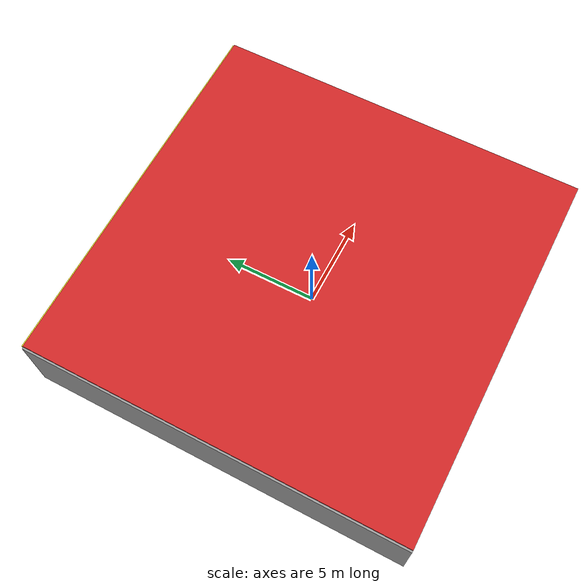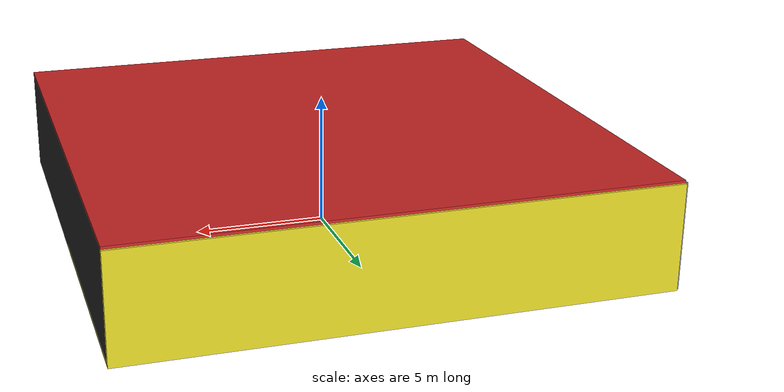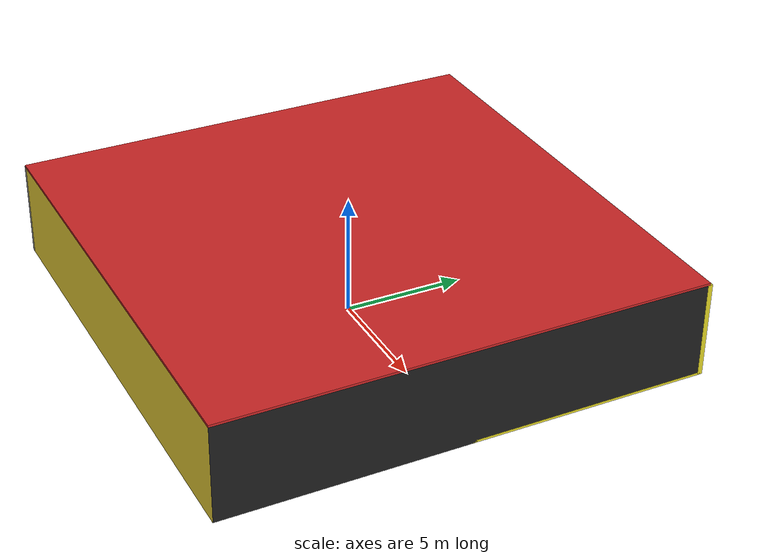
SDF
<sdf version="1.4">
 <world name="default">
  <physics type="ode">
   <max_step_size>0.001</max_step_size>
   <real_time_factor>1</real_time_factor>
   <real_time_update_rate>1000</real_time_update_rate>
   <gravity>0 0 -9.8</gravity>
  </physics>
  <scene><ambient>0.4 0.4 0.4 1</ambient><background>0.7 0.7 0.7 1</background><shadows>1</shadows></scene>
  <model name="Surrounding">
   <static>1</static>
   <link name="Ceiling">
    <collision name="Ceiling_Collision"><geometry><box><size>20 20 0.1</size></box></geometry></collision>
    <visual name="Ceiling_Visual">
     <geometry><box><size>20 20 0.1</size></box></geometry>
     <material>
      <script><uri>file://media/materials/scripts/gazebo.material</uri><name>Gazebo/Red</name></script>
     </material>
    </visual>
    <pose>0 0 4.05 0 0 0</pose>
   </link>
   <link name="Wall_South">
    <collision name="Wall_South_Collision">
     <geometry><box><size>20 0 4</size></box></geometry>
     <pose>0 0 2 0 -0 0</pose>
    </collision>
    <visual name="Wall_South_Visual">
     <pose>0 0 2 0 -0 0</pose>
     <geometry><box><size>20 0 4</size></box></geometry>
     <material>
      <script><uri>file://media/materials/scripts/gazebo.material</uri><name>Gazebo/ZincYellow</name></script>
     </material>
    </visual>
    <velocity_decay><linear>0</linear><angular>0</angular></velocity_decay>
    <pose>0 -10 0 0 -0 0</pose>
   </link>
   <link name="Wall_East">
    <collision name="Wall_21_Collision">
     <geometry><box><size>20 0 4</size></box></geometry>
     <pose>0 0 2 0 -0 0</pose>
    </collision>
    <visual name="Wall_21_Visual">
     <pose>0 0 2 0 -0 0</pose>
     <geometry><box><size>20 0 4</size></box></geometry>
     <material>
      <script><uri>file://media/materials/scripts/gazebo.material</uri><name>Gazebo/FlatBlack</name></script>
     </material>
    </visual>
    <velocity_decay><linear>0</linear><angular>0</angular></velocity_decay>
    <pose>10 0 0 0 -0 1.5708</pose>
   </link>
   <link name="Wall_North">
    <collision name="Wall_22_Collision">
     <geometry><box><size>20 0.2 4</size></box></geometry>
     <pose>0 0 2 0 -0 0</pose>
    </collision>
    <visual name="Wall_22_Visual">
     <pose>0 0 2 0 -0 0</pose>
     <geometry><box><size>20 0.2 4</size></box></geometry>
     <material>
      <script><uri>file://media/materials/scripts/gazebo.material</uri><name>Gazebo/YellowGlow</name></script>
     </material>
    </visual>
    <velocity_decay><linear>0</linear><angular>0</angular></velocity_decay>
    <pose>0 10 0 0 -0 0</pose>
   </link>
   <link name="Wall_West">
    <collision name="Wall_23_Collision">
     <geometry><box><size>20 0.2 4</size></box></geometry>
     <pose>0 0 2 0 -0 0</pose>
    </collision>
    <visual name="Wall_23_Visual">
     <pose>0 0 2 0 -0 0</pose>
     <geometry><box><size>20 0.2 4</size></box></geometry>
     <material>
      <script><uri>file://media/materials/scripts/gazebo.material</uri><name>Gazebo/GreyGradientSky</name></script>
     </material>
    </visual>
    <velocity_decay><linear>0</linear><angular>0</angular></velocity_decay>
    <pose>-10 0 0 0 0 -1.5708</pose>
   </link>
   <link name="Ground_link">
    <collision name="collision">
     <pose>0 0 .05 0 -0 0</pose>
     <geometry><box><size>20 20 0.1</size></box></geometry>
    </collision>
    <visual name="visual">
     <pose>0 0 .05 0 -0 0</pose>
     <geometry><box><size>20 20 0.1</size></box></geometry>
     <material>
      <script><uri>file://media/materials/scripts/gazebo.material</uri><name>Gazebo/YellowGlow</name></script>
     </material>
    </visual>
   </link>
   <static>1</static>
  </model>
  <spherical_coordinates>
   <surface_model>EARTH_WGS84</surface_model>
   <latitude_deg>0</latitude_deg>
   <longitude_deg>0</longitude_deg>
   <elevation>0</elevation>
   <heading_deg>0</heading_deg>
  </spherical_coordinates>
  <light name="lightball_0" type="diffuse">
   <diffuse>0.8 0.8 0.8 1</diffuse>
   <specular>0.2 0.2 0.2 1</specular>
   <attenuation>
    <range>100</range>
    <constant>0.7</constant>
    <linear>0.01</linear>
    <quadratic>0.001</quadratic>
   </attenuation>
   <direction>-0.5 0.1 -0.9</direction>
   <pose>7.6452283639 9.7302187877 1.2278465934 0 0 0</pose>
  </light>
  <light name="lightball_1" type="diffuse">
   <diffuse>0.8 0.8 0.8 1</diffuse>
   <specular>0.2 0.2 0.2 1</specular>
   <attenuation>
    <range>100</range>
    <constant>0.7</constant>
    <linear>0.01</linear>
    <quadratic>0.001</quadratic>
   </attenuation>
   <direction>-0.5 0.1 -0.9</direction>
   <pose>-7.60227995971 -2.44690584788 3.78190616577 0 0 0</pose>
  </light>
  <light name="lightball_2" type="diffuse">
   <diffuse>0.8 0.8 0.8 1</diffuse>
   <specular>0.2 0.2 0.2 1</specular>
   <attenuation>
    <range>100</range>
    <constant>0.7</constant>
    <linear>0.01</linear>
    <quadratic>0.001</quadratic>
   </attenuation>
   <direction>-0.5 0.1 -0.9</direction>
   <pose>-2.62871530572 5.62541799133 3.65858827263 0 0 0</pose>
  </light>
  <light name="lightball_3" type="diffuse">
   <diffuse>0.8 0.8 0.8 1</diffuse>
   <specular>0.2 0.2 0.2 1</specular>
   <attenuation>
    <range>100</range>
    <constant>0.7</constant>
    <linear>0.01</linear>
    <quadratic>0.001</quadratic>
   </attenuation>
   <direction>-0.5 0.1 -0.9</direction>
   <pose>1.4354337721 7.62758518834 1.66916628336 0 0 0</pose>
  </light>
  <light name="lightball_4" type="diffuse">
   <diffuse>0.8 0.8 0.8 1</diffuse>
   <specular>0.2 0.2 0.2 1</specular>
   <attenuation>
    <range>100</range>
    <constant>0.7</constant>
    <linear>0.01</linear>
    <quadratic>0.001</quadratic>
   </attenuation>
   <direction>-0.5 0.1 -0.9</direction>
   <pose>-8.23878816214 7.829338556 0.627637265217 0 0 0</pose>
  </light>
  <include>
   <uri>model://construction_cone</uri>
   <pose>-7.12313937085 -8.54002716909 0 0 0 1.40084496535</pose>
  </include>
  <include>
   <uri>model://robocup_3Dsim_goal</uri>
   <pose>-5.11104399513 -6.95133702859 0 0 0 0.431911730242</pose>
  </include>
  <include>
   <uri>model://construction_cone</uri>
   <pose>-4.60420622261 3.92616829486 0 0 0 2.33585308708</pose>
  </include>
  <include>
   <uri>model://robocup_3Dsim_goal</uri>
   <pose>2.33354839903 -1.17693141936 0 0 0 1.06904072978</pose>
  </include>
  <include><uri>model://cabinet</uri><pose>4.80017312997 4.96008966642 0 0 0 2.08473194845</pose></include>
 </world>
</sdf>

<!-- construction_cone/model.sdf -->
<sdf version="1.5">
  <model name="Construction Cone">
    <link name="link">
      <collision name="collision">
        <geometry>
          <mesh>
            <scale>10 10 10</scale>
            <uri>file://isr-testbed/construction_cone/meshes/construction_cone.dae</uri>
          </mesh>
        </geometry>
      </collision>
      <visual name="visual">
        <geometry>
          <mesh>
            <scale>10 10 10</scale>
            <uri>file://isr-testbed/construction_cone/meshes/construction_cone.dae</uri>
          </mesh>
        </geometry>
      </visual>
    </link>
  </model>
</sdf>

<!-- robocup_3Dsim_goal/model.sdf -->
<sdf version="1.5">
  <model name="robocup_3d_goal">
    <static>true</static>
    <link name="left_post">
      <pose>0 1.05 0.45 0 0 0</pose>
      <collision name="collision">
        <geometry>
          <cylinder>
            <radius>0.05</radius>
            <length>0.9</length>
          </cylinder>
        </geometry>
      </collision>
      <visual name="visual">
        <geometry>
          <cylinder>
            <radius>0.05</radius>
            <length>0.9</length>
          </cylinder>
        </geometry>
        <material>
          <script>
            <uri>file://media/materials/scripts/gazebo.material</uri>
            <name>Gazebo/ZincYellow</name>
          </script>
        </material>
      </visual>
    </link>
    <link name="left_support_horiz_lower">
      <pose>0.30 1.05 0.01 0 0 0</pose>
      <collision name="collision">
        <geometry>
          <box>
            <size>0.50 0.02 0.02</size>
          </box>
        </geometry>
      </collision>
      <visual name="visual">
        <geometry>
          <box>
            <size>0.50 0.02 0.02</size>
          </box>
        </geometry>
        <material>
          <script>
            <uri>file://media/materials/scripts/gazebo.material</uri>
            <name>Gazebo/White</name>
          </script>
        </material>
      </visual>
    </link>
    <link name="left_support_horiz_upper">
      <pose>0.30 1.05 0.79 0 0 0</pose>
      <collision name="collision">
        <geometry>
          <box>
            <size>0.50 0.02 0.02</size>
          </box>
        </geometry>
      </collision>
      <visual name="visual">
        <geometry>
          <box>
            <size>0.50 0.02 0.02</size>
          </box>
        </geometry>
        <material>
          <script>
            <uri>file://media/materials/scripts/gazebo.material</uri>
            <name>Gazebo/White</name>
          </script>
        </material>
      </visual>
    </link>
    <link name="left_support_vertical">
      <pose>0.56 1.05 0.4 0 1.5708 0</pose>
      <collision name="collision">
        <geometry>
          <box>
            <size>0.80 0.02 0.02</size>
          </box>
        </geometry>
      </collision>
      <visual name="visual">
        <geometry>
          <box>
            <size>0.80 0.02 0.02</size>
          </box>
        </geometry>
        <material>
          <script>
            <uri>file://media/materials/scripts/gazebo.material</uri>
            <name>Gazebo/White</name>
          </script>
        </material>
      </visual>
    </link>
    <link name="right_support_horiz_lower">
      <pose>0.30 -1.05 0.01 0 0 0</pose>
      <collision name="collision">
        <geometry>
          <box>
            <size>0.50 0.02 0.02</size>
          </box>
        </geometry>
      </collision>
      <visual name="visual">
        <geometry>
          <box>
            <size>0.50 0.02 0.02</size>
          </box>
        </geometry>
        <material>
          <script>
            <uri>file://media/materials/scripts/gazebo.material</uri>
            <name>Gazebo/White</name>
          </script>
        </material>
      </visual>
    </link>
    <link name="right_support_horiz_upper">
      <pose>0.30 -1.05 0.79 0 0 0</pose>
      <collision name="collision">
        <geometry>
          <box>
            <size>0.50 0.02 0.02</size>
          </box>
        </geometry>
      </collision>
      <visual name="visual">
        <geometry>
          <box>
            <size>0.50 0.02 0.02</size>
          </box>
        </geometry>
        <material>
          <script>
            <uri>file://media/materials/scripts/gazebo.material</uri>
            <name>Gazebo/White</name>
          </script>
        </material>
      </visual>
    </link>
    <link name="right_support_vertical">
      <pose>0.56 -1.05 0.4 0 1.5708 0</pose>
      <collision name="collision">
        <geometry>
          <box>
            <size>0.80 0.02 0.02</size>
          </box>
        </geometry>
      </collision>
      <visual name="visual">
        <geometry>
          <box>
            <size>0.80 0.02 0.02</size>
          </box>
        </geometry>
        <material>
          <script>
            <uri>file://media/materials/scripts/gazebo.material</uri>
            <name>Gazebo/White</name>
          </script>
        </material>
      </visual>
    </link>
    <link name="center_support_horiz_lower">
      <pose>0.56 0 0.01 0 1.5708 0</pose>
      <collision name="collision">
        <geometry>
          <box>
            <size>0.02 2.08 0.02</size>
          </box>
        </geometry>
      </collision>
      <visual name="visual">
        <geometry>
          <box>
            <size>0.02 2.08 0.02</size>
          </box>
        </geometry>
        <material>
          <script>
            <uri>file://media/materials/scripts/gazebo.material</uri>
            <name>Gazebo/White</name>
          </script>
        </material>
      </visual>
    </link>
    <link name="center_support_horiz_upper">
      <pose>0.56 0 0.79 0 1.5708 0</pose>
      <collision name="collision">
        <geometry>
          <box>
            <size>0.02 2.08 0.02</size>
          </box>
        </geometry>
      </collision>
      <visual name="visual">
        <geometry>
          <box>
            <size>0.02 2.08 0.02</size>
          </box>
        </geometry>
        <material>
          <script>
            <uri>file://media/materials/scripts/gazebo.material</uri>
            <name>Gazebo/White</name>
          </script>
        </material>
      </visual>
    </link>
    <link name="right_post">
      <pose>0 -1.05 0.45 0 0 0</pose>
      <collision name="collision">
        <geometry>
          <cylinder>
            <radius>0.05</radius>
            <length>0.9</length>
          </cylinder>
        </geometry>
      </collision>
      <visual name="visual">
        <geometry>
          <cylinder>
            <radius>0.05</radius>
            <length>0.9</length>
          </cylinder>
        </geometry>
        <material>
          <script>
            <uri>file://media/materials/scripts/gazebo.material</uri>
            <name>Gazebo/ZincYellow</name>
          </script>
        </material>
      </visual>
    </link>
    <link name="crossbar">
      <pose>0 0 0.85 1.57 1.57 0</pose>
      <collision name="collision">
        <geometry>
          <cylinder>
            <radius>0.05</radius>
            <length>2.0</length>
          </cylinder>
        </geometry>
      </collision>
      <visual name="visual">
        <geometry>
          <cylinder>
            <radius>0.05</radius>
            <length>2.0</length>
          </cylinder>
        </geometry>
        <material>
          <script>
            <uri>file://media/materials/scripts/gazebo.material</uri>
            <name>Gazebo/ZincYellow</name>
          </script>
        </material>
      </visual>
    </link>
    <link name="center_net">
      <pose>0.56 0 0.40 0 0 0</pose>
      <collision name="collision">
        <geometry>
          <box>
            <size>0.01 2.1 0.80</size>
          </box>
        </geometry>
      </collision>
      <visual name="visual">
        <geometry>
          <box>
            <size>0.01 2.1 0.80</size>
          </box>
        </geometry>
        <material>
          <script>
            <uri>model://../model_source/models/robocup09_spl_field/materials/scripts/</uri>
            <uri>model://../model_source/models/robocup09_spl_field/materials/textures/</uri>
            <name>RoboCup/Net</name>
          </script>
        </material>
      </visual>
    </link>
    <link name="left_net">
      <pose>0.30 1.05 0.40 0 0 0</pose>
      <collision name="collision">
        <geometry>
          <box>
            <size>0.50 0.01 0.76</size>
          </box>
        </geometry>
      </collision>
      <visual name="visual">
        <geometry>
          <box>
            <size>0.50 0.01 0.76</size>
          </box>
        </geometry>
        <material>
          <script>
            <uri>model://../model_source/models/robocup09_spl_field/materials/scripts/</uri>
            <uri>model://../model_source/models/robocup09_spl_field/materials/textures/</uri>
            <name>RoboCup/Net</name>
          </script>
        </material>
      </visual>
    </link>
    <link name="right_net">
      <pose>0.30 -1.05 0.40 0 0 0</pose>
      <collision name="collision">
        <geometry>
          <box>
            <size>0.50 0.01 0.76</size>
          </box>
        </geometry>
      </collision>
      <visual name="visual">
        <geometry>
          <box>
            <size>0.50 0.01 0.76</size>
          </box>
        </geometry>
        <material>
          <script>
            <uri>model://../model_source/models/robocup09_spl_field/materials/scripts/</uri>
            <uri>model://../model_source/models/robocup09_spl_field/materials/textures/</uri>
            <name>RoboCup/Net</name>
          </script>
        </material>
      </visual>
    </link>
  </model>
</sdf>

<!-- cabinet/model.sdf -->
<sdf version="1.5">
  <model name="cabinet">
    <static>true</static>
    <link name="cabinet_bottom_plate">
      <inertial>
        <pose>0 0 -1 0 0 0</pose>
        <inertia>
          <ixx>2.050000</ixx>
          <ixy>0</ixy>
          <ixz>0</ixz>
          <iyy>2.050000</iyy>
          <iyz>0</iyz>
          <izz>2.050000</izz>
        </inertia>
        <mass>25.000000</mass>
      </inertial>
      <collision name="cabinet_bottom_plate_geom">
        <pose>0 0 0.010000 0 0 0</pose>
        <geometry>
          <box>
            <size>0.450000 0.450000 0.020000</size>
          </box>
        </geometry>
      </collision>
      <visual name="cabinet_bottom_plate_geom_visual">
        <pose>0 0 0.010000 0 0 0</pose>
        <geometry>
          <box>
            <size>0.450000 0.450000 0.020000</size>
          </box>
        </geometry>
        <material>
          <script>
            <uri>model://media/materials/scripts/gazebo.material</uri>
            <name>Gazebo/Wood</name>
          </script>
        </material>
      </visual>
      <collision name="cabinet_bottom_plate_geom_cabinet_back_plate">
        <pose>0.235000 0 0.510000 0 0 0</pose>
        <geometry>
          <box>
            <size>0.020000 0.450000 1.020000</size>
          </box>
        </geometry>
      </collision>
      <visual name="cabinet_bottom_plate_geom_cabinet_back_plate_visual">
        <pose>0.235000 0 0.510000 0 0 0</pose>
        <geometry>
          <box>
            <size>0.020000 0.450000 1.020000</size>
          </box>
        </geometry>
        <material>
          <script>
            <uri>model://media/materials/scripts/gazebo.material</uri>
            <name>Gazebo/Wood</name>
          </script>
        </material>
      </visual>
      <collision name="cabinet_bottom_plate_geom_cabinet_left_plate">
        <pose>0 0.235000 0.510000 0 0 0</pose>
        <geometry>
          <box>
            <size>0.450000 0.020000 1.020000</size>
          </box>
        </geometry>
      </collision>
      <visual name="cabinet_bottom_plate_geom_cabinet_left_plate_visual">
        <pose>0 0.235000 0.510000 0 0 0</pose>
        <geometry>
          <box>
            <size>0.450000 0.020000 1.020000</size>
          </box>
        </geometry>
        <material>
          <script>
            <uri>model://media/materials/scripts/gazebo.material</uri>
            <name>Gazebo/Wood</name>
          </script>
        </material>
      </visual>
      <collision name="cabinet_bottom_plate_geom_cabinet_middle_plate">
        <pose>0 0 0.510000 0 0 0</pose>
        <geometry>
          <box>
            <size>0.450000 0.450000 0.020000</size>
          </box>
        </geometry>
      </collision>
      <visual name="cabinet_bottom_plate_geom_cabinet_middle_plate_visual">
        <pose>0 0 0.510000 0 0 0</pose>
        <geometry>
          <box>
            <size>0.450000 0.450000 0.020000</size>
          </box>
        </geometry>
        <material>
          <script>
            <uri>model://media/materials/scripts/gazebo.material</uri>
            <name>Gazebo/Wood</name>
          </script>
        </material>
      </visual>
      <collision name="cabinet_bottom_plate_geom_cabinet_right_plate">
        <pose>0 -0.235000 0.510000 0 0 0</pose>
        <geometry>
          <box>
            <size>0.450000 0.020000 1.020000</size>
          </box>
        </geometry>
      </collision>
      <visual name="cabinet_bottom_plate_geom_cabinet_right_plate_visual">
        <pose>0 -0.235000 0.510000 0 0 0</pose>
        <geometry>
          <box>
            <size>0.450000 0.020000 1.020000</size>
          </box>
        </geometry>
        <material>
          <script>
            <uri>model://media/materials/scripts/gazebo.material</uri>
            <name>Gazebo/Wood</name>
          </script>
        </material>
      </visual>
      <collision name="cabinet_bottom_plate_geom_cabinet_top_plate">
        <pose>0 0 1.010000 0 0 0</pose>
        <geometry>
          <box>
            <size>0.450000 0.450000 0.020000</size>
          </box>
        </geometry>
      </collision>
      <visual name="cabinet_bottom_plate_geom_cabinet_top_plate_visual">
        <pose>0 0 1.010000 0 0 0</pose>
        <geometry>
          <box>
            <size>0.450000 0.450000 0.020000</size>
          </box>
        </geometry>
        <material>
          <script>
            <uri>model://media/materials/scripts/gazebo.material</uri>
            <name>Gazebo/Wood</name>
          </script>
        </material>
      </visual>
    </link>
  </model>
</sdf>
